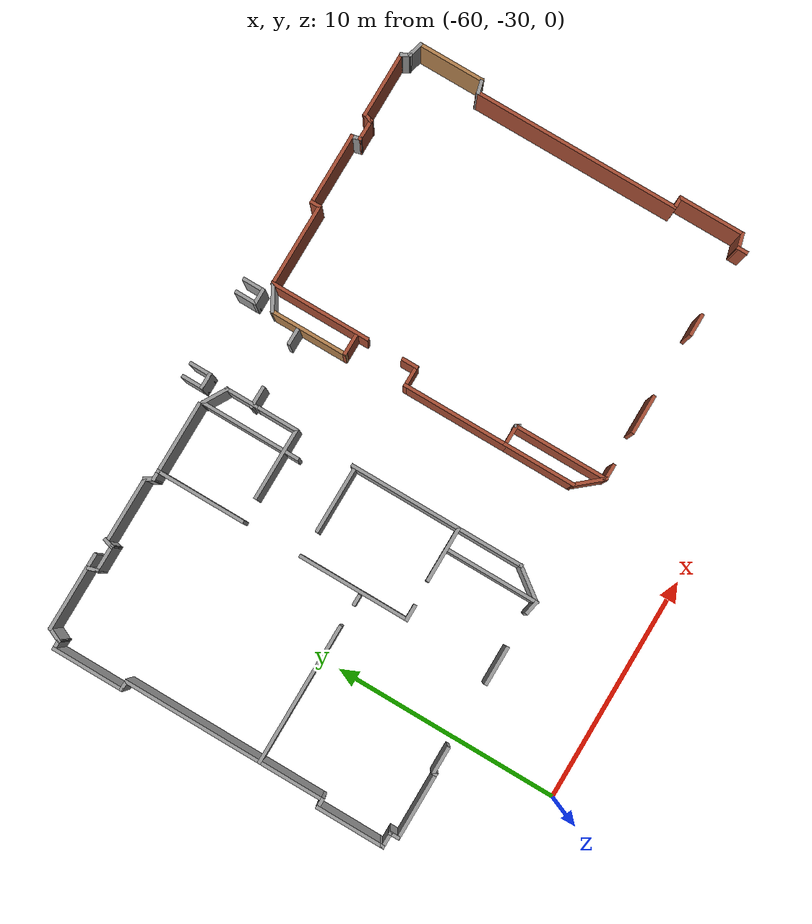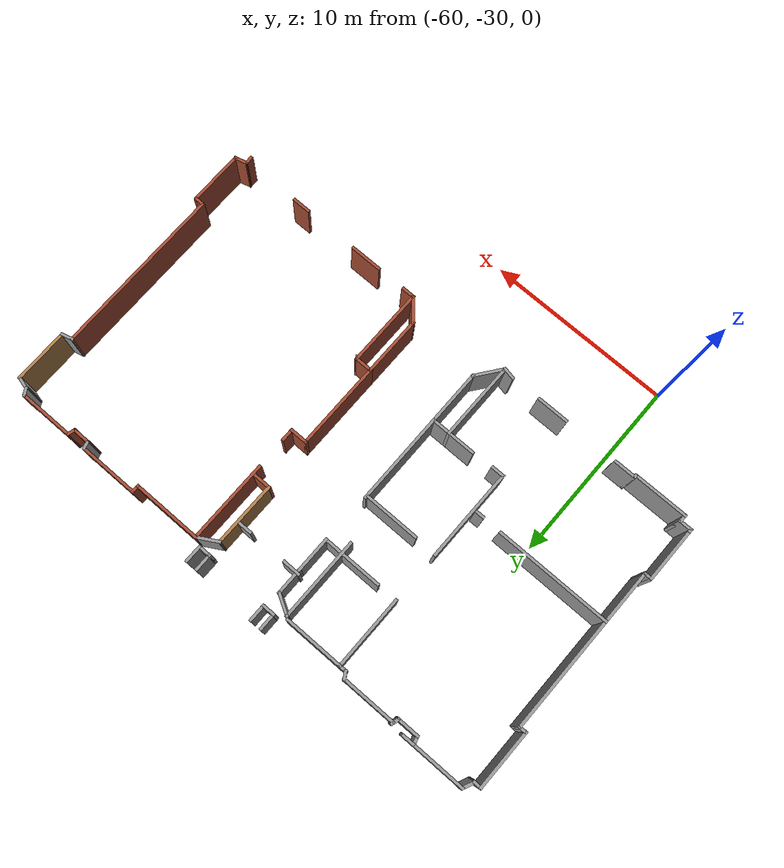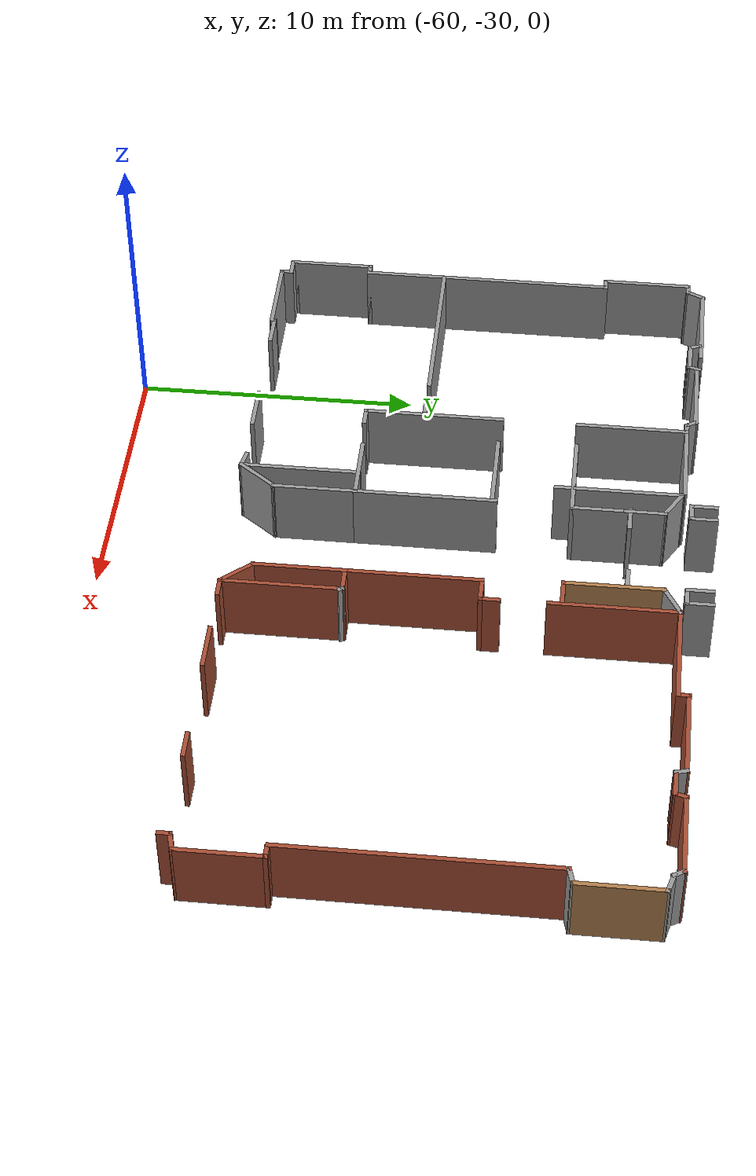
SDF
<sdf version="1.7">
 <model name="TD_1">
  <pose>-32.4963 -12.7971 0 0 -0 0</pose>
  <link name="Wall_10">
   <collision name="Wall_10_Collision">
    <geometry><box><size>1 0.15 2.5</size></box></geometry>
    <pose>0 0 1.25 0 -0 0</pose>
   </collision>
   <visual name="Wall_10_Visual">
    <pose>0 0 1.25 0 -0 0</pose>
    <geometry><box><size>1 0.15 2.5</size></box></geometry>
    <material>
     <script><uri>file://media/materials/scripts/gazebo.material</uri><name>Gazebo/Bricks</name></script>
     <ambient>1 1 1 1</ambient>
    </material>
    <meta><layer>0</layer></meta>
   </visual>
   <pose>-8.41261 2.89283 0 0 -0 0</pose>
  </link>
  <link name="Wall_100">
   <collision name="Wall_100_Collision">
    <geometry><box><size>0.75 0.15 2.5</size></box></geometry>
    <pose>0 0 1.25 0 -0 0</pose>
   </collision>
   <visual name="Wall_100_Visual">
    <pose>0 0 1.25 0 -0 0</pose>
    <geometry><box><size>0.75 0.15 2.5</size></box></geometry>
    <material>
     <script><uri>file://media/materials/scripts/gazebo.material</uri><name>Gazebo/Grey</name></script>
     <ambient>1 1 1 1</ambient>
    </material>
    <meta><layer>0</layer></meta>
   </visual>
   <pose>-24.0693 -8.5054 0 0 -0 0</pose>
  </link>
  <link name="Wall_102">
   <collision name="Wall_102_Collision">
    <geometry><box><size>3 0.15 2.5</size></box></geometry>
    <pose>0 0 1.25 0 -0 0</pose>
   </collision>
   <visual name="Wall_102_Visual">
    <pose>0 0 1.25 0 -0 0</pose>
    <geometry><box><size>3 0.15 2.5</size></box></geometry>
    <material>
     <script><uri>file://media/materials/scripts/gazebo.material</uri><name>Gazebo/Grey</name></script>
     <ambient>1 1 1 1</ambient>
    </material>
    <meta><layer>0</layer></meta>
   </visual>
   <pose>-21.7443 -3.6954 0 0 -0 0</pose>
  </link>
  <link name="Wall_106">
   <collision name="Wall_106_Collision">
    <geometry><box><size>2.5 0.15 2.5</size></box></geometry>
    <pose>0 0 1.25 0 -0 0</pose>
   </collision>
   <visual name="Wall_106_Visual">
    <pose>0 0 1.25 0 -0 0</pose>
    <geometry><box><size>2.5 0.15 2.5</size></box></geometry>
    <material>
     <script><uri>file://media/materials/scripts/gazebo.material</uri><name>Gazebo/Grey</name></script>
     <ambient>1 1 1 1</ambient>
    </material>
    <meta><layer>0</layer></meta>
   </visual>
   <pose>-21.4301 -8.4346 0 0 -0 0</pose>
  </link>
  <link name="Wall_107">
   <collision name="Wall_107_Collision">
    <geometry><box><size>5 0.15 2.5</size></box></geometry>
    <pose>0 0 1.25 0 -0 0</pose>
   </collision>
   <visual name="Wall_107_Visual">
    <pose>0 0 1.25 0 -0 0</pose>
    <geometry><box><size>5 0.15 2.5</size></box></geometry>
    <material>
     <script><uri>file://media/materials/scripts/gazebo.material</uri><name>Gazebo/Grey</name></script>
     <ambient>1 1 1 1</ambient>
    </material>
    <meta><layer>0</layer></meta>
   </visual>
   <pose>-20.2551 -6.0096 0 0 -0 1.5708</pose>
  </link>
  <link name="Wall_109">
   <collision name="Wall_109_Collision">
    <geometry><box><size>3 0.15 2.5</size></box></geometry>
    <pose>0 0 1.25 0 -0 0</pose>
   </collision>
   <visual name="Wall_109_Visual">
    <pose>0 0 1.25 0 -0 0</pose>
    <geometry><box><size>3 0.15 2.5</size></box></geometry>
    <material>
     <script><uri>file://media/materials/scripts/gazebo.material</uri><name>Gazebo/Grey</name></script>
     <ambient>1 1 1 1</ambient>
    </material>
    <meta><layer>0</layer></meta>
   </visual>
   <pose>-32.0643 -7.82191 0 0 -0 -1.5708</pose>
  </link>
  <link name="Wall_11">
   <collision name="Wall_11_Collision">
    <geometry><box><size>0.5 0.15 2.5</size></box></geometry>
    <pose>0 0 1.25 0 -0 0</pose>
   </collision>
   <visual name="Wall_11_Visual">
    <pose>0 0 1.25 0 -0 0</pose>
    <geometry><box><size>0.5 0.15 2.5</size></box></geometry>
    <material>
     <script><uri>file://media/materials/scripts/gazebo.material</uri><name>Gazebo/Bricks</name></script>
     <ambient>1 1 1 1</ambient>
    </material>
    <meta><layer>0</layer></meta>
   </visual>
   <pose>-7.94231 3.06187 0 0 -0 1.309</pose>
  </link>
  <link name="Wall_110">
   <collision name="Wall_110_Collision">
    <geometry><box><size>0.5 0.15 2.5</size></box></geometry>
    <pose>0 0 1.25 0 -0 0</pose>
   </collision>
   <visual name="Wall_110_Visual">
    <pose>0 0 1.25 0 -0 0</pose>
    <geometry><box><size>0.5 0.15 2.5</size></box></geometry>
    <material>
     <script><uri>file://media/materials/scripts/gazebo.material</uri><name>Gazebo/Grey</name></script>
     <ambient>1 1 1 1</ambient>
    </material>
    <meta><layer>0</layer></meta>
   </visual>
   <pose>-32.2393 -9.24691 0 0 -0 3.14159</pose>
  </link>
  <link name="Wall_111">
   <collision name="Wall_111_Collision">
    <geometry><box><size>3 0.15 2.5</size></box></geometry>
    <pose>0 0 1.25 0 -0 0</pose>
   </collision>
   <visual name="Wall_111_Visual">
    <pose>0 0 1.25 0 -0 0</pose>
    <geometry><box><size>3 0.15 2.5</size></box></geometry>
    <material>
     <script><uri>file://media/materials/scripts/gazebo.material</uri><name>Gazebo/Grey</name></script>
     <ambient>1 1 1 1</ambient>
    </material>
    <meta><layer>0</layer></meta>
   </visual>
   <pose>-32.4143 -10.6719 0 0 -0 -1.5708</pose>
  </link>
  <link name="Wall_112">
   <collision name="Wall_112_Collision">
    <geometry><box><size>0.25 0.15 2.5</size></box></geometry>
    <pose>0 0 1.25 0 -0 0</pose>
   </collision>
   <visual name="Wall_112_Visual">
    <pose>0 0 1.25 0 -0 0</pose>
    <geometry><box><size>0.25 0.15 2.5</size></box></geometry>
    <material>
     <script><uri>file://media/materials/scripts/gazebo.material</uri><name>Gazebo/Grey</name></script>
     <ambient>1 1 1 1</ambient>
    </material>
    <meta><layer>0</layer></meta>
   </visual>
   <pose>-32.4143 -12.1469 0 0 -0 -1.5708</pose>
  </link>
  <link name="Wall_113">
   <collision name="Wall_113_Collision">
    <geometry><box><size>0.75 0.15 2.5</size></box></geometry>
    <pose>0 0 1.25 0 -0 0</pose>
   </collision>
   <visual name="Wall_113_Visual">
    <pose>0 0 1.25 0 -0 0</pose>
    <geometry><box><size>0.75 0.15 2.5</size></box></geometry>
    <material>
     <script><uri>file://media/materials/scripts/gazebo.material</uri><name>Gazebo/Grey</name></script>
     <ambient>1 1 1 1</ambient>
    </material>
    <meta><layer>0</layer></meta>
   </visual>
   <pose>-32.1143 -12.1969 0 0 -0 0</pose>
  </link>
  <link name="Wall_114">
   <collision name="Wall_114_Collision">
    <geometry><box><size>0.5 0.15 2.5</size></box></geometry>
    <pose>0 0 1.25 0 -0 0</pose>
   </collision>
   <visual name="Wall_114_Visual">
    <pose>0 0 1.25 0 -0 0</pose>
    <geometry><box><size>0.5 0.15 2.5</size></box></geometry>
    <material>
     <script><uri>file://media/materials/scripts/gazebo.material</uri><name>Gazebo/Grey</name></script>
     <ambient>1 1 1 1</ambient>
    </material>
    <meta><layer>0</layer></meta>
   </visual>
   <pose>-31.8143 -12.3719 0 0 -0 -1.5708</pose>
  </link>
  <link name="Wall_118">
   <collision name="Wall_118_Collision">
    <geometry><box><size>3 0.15 2.5</size></box></geometry>
    <pose>0 0 1.25 0 -0 0</pose>
   </collision>
   <visual name="Wall_118_Visual">
    <pose>0 0 1.25 0 -0 0</pose>
    <geometry><box><size>3 0.15 2.5</size></box></geometry>
    <material>
     <script><uri>file://media/materials/scripts/gazebo.material</uri><name>Gazebo/Grey</name></script>
     <ambient>1 1 1 1</ambient>
    </material>
    <meta><layer>0</layer></meta>
   </visual>
   <pose>-30.3893 -12.5469 0 0 -0 0</pose>
  </link>
  <link name="Wall_119">
   <collision name="Wall_119_Collision">
    <geometry><box><size>0.25 0.15 2.5</size></box></geometry>
    <pose>0 0 1.25 0 -0 0</pose>
   </collision>
   <visual name="Wall_119_Visual">
    <pose>0 0 1.25 0 -0 0</pose>
    <geometry><box><size>0.25 0.15 2.5</size></box></geometry>
    <material>
     <script><uri>file://media/materials/scripts/gazebo.material</uri><name>Gazebo/Grey</name></script>
     <ambient>1 1 1 1</ambient>
    </material>
    <meta><layer>0</layer></meta>
   </visual>
   <pose>-28.9643 -12.4969 0 0 -0 1.5708</pose>
  </link>
  <link name="Wall_12">
   <collision name="Wall_12_Collision">
    <geometry><box><size>3 0.15 2.5</size></box></geometry>
    <pose>0 0 1.25 0 -0 0</pose>
   </collision>
   <visual name="Wall_12_Visual">
    <pose>0 0 1.25 0 -0 0</pose>
    <geometry><box><size>3 0.15 2.5</size></box></geometry>
    <material>
     <script><uri>file://media/materials/scripts/gazebo.material</uri><name>Gazebo/Bricks</name></script>
     <ambient>1 1 1 1</ambient>
    </material>
    <meta><layer>0</layer></meta>
   </visual>
   <pose>-6.47202 3.2309 0 0 -0 0</pose>
  </link>
  <link name="Wall_120">
   <collision name="Wall_120_Collision">
    <geometry><box><size>1.25 0.15 2.5</size></box></geometry>
    <pose>0 0 1.25 0 -0 0</pose>
   </collision>
   <visual name="Wall_120_Visual">
    <pose>0 0 1.25 0 -0 0</pose>
    <geometry><box><size>1.25 0.15 2.5</size></box></geometry>
    <material>
     <script><uri>file://media/materials/scripts/gazebo.material</uri><name>Gazebo/Grey</name></script>
     <ambient>1 1 1 1</ambient>
    </material>
    <meta><layer>0</layer></meta>
   </visual>
   <pose>-28.4143 -12.4469 0 0 -0 0</pose>
  </link>
  <link name="Wall_124">
   <collision name="Wall_124_Collision">
    <geometry><box><size>1.75 0.15 2.5</size></box></geometry>
    <pose>0 0 1.25 0 -0 0</pose>
   </collision>
   <visual name="Wall_124_Visual">
    <pose>0 0 1.25 0 -0 0</pose>
    <geometry><box><size>1.75 0.15 2.5</size></box></geometry>
    <material>
     <script><uri>file://media/materials/scripts/gazebo.material</uri><name>Gazebo/Grey</name></script>
     <ambient>1 1 1 1</ambient>
    </material>
    <meta><layer>0</layer></meta>
   </visual>
   <pose>-24.1237 -12.4588 0 0 -0 0</pose>
  </link>
  <link name="Wall_126">
   <collision name="Wall_126_Collision">
    <geometry><box><size>4.25 0.15 2.5</size></box></geometry>
    <pose>0 0 1.25 0 -0 0</pose>
   </collision>
   <visual name="Wall_126_Visual">
    <pose>0 0 1.25 0 -0 0</pose>
    <geometry><box><size>4.25 0.15 2.5</size></box></geometry>
    <material>
     <script><uri>file://media/materials/scripts/gazebo.material</uri><name>Gazebo/Grey</name></script>
     <ambient>1 1 1 1</ambient>
    </material>
    <meta><layer>0</layer></meta>
   </visual>
   <pose>-21.1888 -10.4845 0 0 -0 -1.5708</pose>
  </link>
  <link name="Wall_129">
   <collision name="Wall_129_Collision">
    <geometry><box><size>0.699097 0.15 2.5</size></box></geometry>
    <pose>0 0 1.25 0 -0 0</pose>
   </collision>
   <visual name="Wall_129_Visual">
    <pose>0 0 1.25 0 -0 0</pose>
    <geometry><box><size>0.699097 0.15 2.5</size></box></geometry>
    <material>
     <script><uri>file://media/materials/scripts/gazebo.material</uri><name>Gazebo/Grey</name></script>
     <ambient>1 1 1 1</ambient>
    </material>
    <meta><layer>0</layer></meta>
   </visual>
   <pose>-21.4584 -12.4828 0 0 -0 -0.189446</pose>
  </link>
  <link name="Wall_13">
   <collision name="Wall_13_Collision">
    <geometry><box><size>0.15 0.15 2.5</size></box></geometry>
    <pose>0 0 1.25 0 -0 0</pose>
   </collision>
   <visual name="Wall_13_Visual">
    <pose>0 0 1.25 0 -0 0</pose>
    <geometry><box><size>0.15 0.15 2.5</size></box></geometry>
    <material>
     <script><uri>file://media/materials/scripts/gazebo.material</uri><name>Gazebo/Grey</name></script>
     <ambient>1 1 1 1</ambient>
    </material>
    <meta><layer>0</layer></meta>
   </visual>
   <pose>-5.04702 3.2309 0 0 -0 0</pose>
  </link>
  <link name="Wall_133">
   <collision name="Wall_133_Collision">
    <geometry><box><size>3 0.15 2.5</size></box></geometry>
    <pose>0 0 1.25 0 -0 0</pose>
   </collision>
   <visual name="Wall_133_Visual">
    <pose>0 0 1.25 0 -0 0</pose>
    <geometry><box><size>3 0.15 2.5</size></box></geometry>
    <material>
     <script><uri>file://media/materials/scripts/gazebo.material</uri><name>Gazebo/Grey</name></script>
     <ambient>1 1 1 1</ambient>
    </material>
    <meta><layer>0</layer></meta>
   </visual>
   <pose>-20.2551 -9.8596 0 0 -0 -1.5708</pose>
  </link>
  <link name="Wall_134">
   <collision name="Wall_134_Collision">
    <geometry><box><size>1.71016 0.15 2.5</size></box></geometry>
    <pose>0 0 1.25 0 -0 0</pose>
   </collision>
   <visual name="Wall_134_Visual">
    <pose>0 0 1.25 0 -0 0</pose>
    <geometry><box><size>1.71016 0.15 2.5</size></box></geometry>
    <material>
     <script><uri>file://media/materials/scripts/gazebo.material</uri><name>Gazebo/Grey</name></script>
     <ambient>1 1 1 1</ambient>
    </material>
    <meta><layer>0</layer></meta>
   </visual>
   <pose>-20.7219 -11.9096 0 0 -0 -2.2124</pose>
  </link>
  <link name="Wall_14">
   <collision name="Wall_14_Collision">
    <geometry><box><size>0.15 0.15 2.5</size></box></geometry>
    <pose>0 0 1.25 0 -0 0</pose>
   </collision>
   <visual name="Wall_14_Visual">
    <pose>0 0 1.25 0 -0 0</pose>
    <geometry><box><size>0.15 0.15 2.5</size></box></geometry>
    <material>
     <script><uri>file://media/materials/scripts/gazebo.material</uri><name>Gazebo/Grey</name></script>
     <ambient>1 1 1 1</ambient>
    </material>
    <meta><layer>0</layer></meta>
   </visual>
   <pose>-5.04702 3.2309 0 0 -0 0</pose>
  </link>
  <link name="Wall_16">
   <collision name="Wall_16_Collision">
    <geometry><box><size>0.5 0.15 2.5</size></box></geometry>
    <pose>0 0 1.25 0 -0 0</pose>
   </collision>
   <visual name="Wall_16_Visual">
    <pose>0 0 1.25 0 -0 0</pose>
    <geometry><box><size>0.5 0.15 2.5</size></box></geometry>
    <material>
     <script><uri>file://media/materials/scripts/gazebo.material</uri><name>Gazebo/Grey</name></script>
     <ambient>1 1 1 1</ambient>
    </material>
    <meta><layer>0</layer></meta>
   </visual>
   <pose>-4.95952 3.07935 0 0 -0 -1.0472</pose>
  </link>
  <link name="Wall_17">
   <collision name="Wall_17_Collision">
    <geometry><box><size>0.75 0.15 2.5</size></box></geometry>
    <pose>0 0 1.25 0 -0 0</pose>
   </collision>
   <visual name="Wall_17_Visual">
    <pose>0 0 1.25 0 -0 0</pose>
    <geometry><box><size>0.75 0.15 2.5</size></box></geometry>
    <material>
     <script><uri>file://media/materials/scripts/gazebo.material</uri><name>Gazebo/Grey</name></script>
     <ambient>1 1 1 1</ambient>
    </material>
    <meta><layer>0</layer></meta>
   </visual>
   <pose>-4.58237 2.84997 0 0 -0 -0.262493</pose>
  </link>
  <link name="Wall_18">
   <collision name="Wall_18_Collision">
    <geometry><box><size>3 0.15 2.5</size></box></geometry>
    <pose>0 0 1.25 0 -0 0</pose>
   </collision>
   <visual name="Wall_18_Visual">
    <pose>0 0 1.25 0 -0 0</pose>
    <geometry><box><size>3 0.15 2.5</size></box></geometry>
    <material>
     <script><uri>file://media/materials/scripts/gazebo.material</uri><name>Gazebo/Wood</name></script>
     <ambient>1 1 1 1</ambient>
    </material>
    <meta><layer>0</layer></meta>
   </visual>
   <pose>-4.29273 1.34715 0 0 -0 -1.5708</pose>
  </link>
  <link name="Wall_21">
   <collision name="Wall_21_Collision">
    <geometry><box><size>0.681794 0.15 2.5</size></box></geometry>
    <pose>0 0 1.25 0 -0 0</pose>
   </collision>
   <visual name="Wall_21_Visual">
    <pose>0 0 1.25 0 -0 0</pose>
    <geometry><box><size>0.681794 0.15 2.5</size></box></geometry>
    <material>
     <script><uri>file://media/materials/scripts/gazebo.material</uri><name>Gazebo/Grey</name></script>
     <ambient>1 1 1 1</ambient>
    </material>
    <meta><layer>0</layer></meta>
   </visual>
   <pose>-4.54964 -0.146374 0 0 -0 0.26063</pose>
  </link>
  <link name="Wall_3">
   <collision name="Wall_3_Collision">
    <geometry><box><size>1 0.15 2.5</size></box></geometry>
    <pose>0 0 1.25 0 -0 0</pose>
   </collision>
   <visual name="Wall_3_Visual">
    <pose>0 0 1.25 0 -0 0</pose>
    <geometry><box><size>1 0.15 2.5</size></box></geometry>
    <material>
     <script><uri>file://media/materials/scripts/gazebo.material</uri><name>Gazebo/Bricks</name></script>
     <ambient>1 1 1 1</ambient>
    </material>
    <meta><layer>0</layer></meta>
   </visual>
   <pose>-16.1747 -1.02961 0 0 -0 0</pose>
  </link>
  <link name="Wall_30">
   <collision name="Wall_30_Collision">
    <geometry><box><size>0.75 0.15 2.5</size></box></geometry>
    <pose>0 0 1.25 0 -0 0</pose>
   </collision>
   <visual name="Wall_30_Visual">
    <pose>0 0 1.25 0 -0 0</pose>
    <geometry><box><size>0.75 0.15 2.5</size></box></geometry>
    <material>
     <script><uri>file://media/materials/scripts/gazebo.material</uri><name>Gazebo/Bricks</name></script>
     <ambient>1 1 1 1</ambient>
    </material>
    <meta><layer>0</layer></meta>
   </visual>
   <pose>-15.5962 -3.43538 0 0 -0 -1.5708</pose>
  </link>
  <link name="Wall_31">
   <collision name="Wall_31_Collision">
    <geometry><box><size>1 0.15 2.5</size></box></geometry>
    <pose>0 0 1.25 0 -0 0</pose>
   </collision>
   <visual name="Wall_31_Visual">
    <pose>0 0 1.25 0 -0 0</pose>
    <geometry><box><size>1 0.15 2.5</size></box></geometry>
    <material>
     <script><uri>file://media/materials/scripts/gazebo.material</uri><name>Gazebo/Bricks</name></script>
     <ambient>1 1 1 1</ambient>
    </material>
    <meta><layer>0</layer></meta>
   </visual>
   <pose>-16.0212 -3.73538 0 0 -0 3.14159</pose>
  </link>
  <link name="Wall_33">
   <collision name="Wall_33_Collision">
    <geometry><box><size>4.75 0.15 2.5</size></box></geometry>
    <pose>0 0 1.25 0 -0 0</pose>
   </collision>
   <visual name="Wall_33_Visual">
    <pose>0 0 1.25 0 -0 0</pose>
    <geometry><box><size>4.75 0.15 2.5</size></box></geometry>
    <material>
     <script><uri>file://media/materials/scripts/gazebo.material</uri><name>Gazebo/Bricks</name></script>
     <ambient>1 1 1 1</ambient>
    </material>
    <meta><layer>0</layer></meta>
   </visual>
   <pose>-16.4462 -6.03538 0 0 -0 -1.5708</pose>
  </link>
  <link name="Wall_34">
   <collision name="Wall_34_Collision">
    <geometry><box><size>1 0.15 2.5</size></box></geometry>
    <pose>0 0 1.25 0 -0 0</pose>
   </collision>
   <visual name="Wall_34_Visual">
    <pose>0 0 1.25 0 -0 0</pose>
    <geometry><box><size>1 0.15 2.5</size></box></geometry>
    <material>
     <script><uri>file://media/materials/scripts/gazebo.material</uri><name>Gazebo/Bricks</name></script>
     <ambient>1 1 1 1</ambient>
    </material>
    <meta><layer>0</layer></meta>
   </visual>
   <pose>-16.0212 -8.33538 0 0 -0 0</pose>
  </link>
  <link name="Wall_35">
   <collision name="Wall_35_Collision">
    <geometry><box><size>0.15 0.15 2.5</size></box></geometry>
    <pose>0 0 1.25 0 -0 0</pose>
   </collision>
   <visual name="Wall_35_Visual">
    <pose>0 0 1.25 0 -0 0</pose>
    <geometry><box><size>0.15 0.15 2.5</size></box></geometry>
    <material>
     <script><uri>file://media/materials/scripts/gazebo.material</uri><name>Gazebo/Grey</name></script>
     <ambient>1 1 1 1</ambient>
    </material>
    <meta><layer>0</layer></meta>
   </visual>
   <pose>-15.5962 -8.33538 0 0 -0 0</pose>
  </link>
  <link name="Wall_36">
   <collision name="Wall_36_Collision">
    <geometry><box><size>0.25 0.15 2.5</size></box></geometry>
    <pose>0 0 1.25 0 -0 0</pose>
   </collision>
   <visual name="Wall_36_Visual">
    <pose>0 0 1.25 0 -0 0</pose>
    <geometry><box><size>0.25 0.15 2.5</size></box></geometry>
    <material>
     <script><uri>file://media/materials/scripts/gazebo.material</uri><name>Gazebo/Grey</name></script>
     <ambient>1 1 1 1</ambient>
    </material>
    <meta><layer>0</layer></meta>
   </visual>
   <pose>-15.5712 -8.37868 0 0 -0 -1.0472</pose>
  </link>
  <link name="Wall_38">
   <collision name="Wall_38_Collision">
    <geometry><box><size>4.25 0.15 2.5</size></box></geometry>
    <pose>0 0 1.25 0 -0 0</pose>
   </collision>
   <visual name="Wall_38_Visual">
    <pose>0 0 1.25 0 -0 0</pose>
    <geometry><box><size>4.25 0.15 2.5</size></box></geometry>
    <material>
     <script><uri>file://media/materials/scripts/gazebo.material</uri><name>Gazebo/Bricks</name></script>
     <ambient>1 1 1 1</ambient>
    </material>
    <meta><layer>0</layer></meta>
   </visual>
   <pose>-15.5962 -10.3854 0 0 -0 -1.5708</pose>
  </link>
  <link name="Wall_39">
   <collision name="Wall_39_Collision">
    <geometry><box><size>0.75 0.15 2.5</size></box></geometry>
    <pose>0 0 1.25 0 -0 0</pose>
   </collision>
   <visual name="Wall_39_Visual">
    <pose>0 0 1.25 0 -0 0</pose>
    <geometry><box><size>0.75 0.15 2.5</size></box></geometry>
    <material>
     <script><uri>file://media/materials/scripts/gazebo.material</uri><name>Gazebo/Bricks</name></script>
     <ambient>1 1 1 1</ambient>
    </material>
    <meta><layer>0</layer></meta>
   </visual>
   <pose>-15.2962 -12.4354 0 0 -0 0</pose>
  </link>
  <link name="Wall_403">
   <collision name="Wall_403_Collision">
    <geometry><box><size>1 0.15 2.5</size></box></geometry>
    <pose>0 0 1.25 0 -0 0</pose>
   </collision>
   <visual name="Wall_403_Visual">
    <pose>0 0 1.25 0 -0 0</pose>
    <geometry><box><size>1 0.15 2.5</size></box></geometry>
    <material>
     <script><uri>file://media/materials/scripts/gazebo.material</uri><name>Gazebo/Grey</name></script>
     <ambient>1 1 1 1</ambient>
    </material>
    <meta><layer>0</layer></meta>
   </visual>
   <pose>-20.6379 3.57846 0 0 -0 -1.5708</pose>
  </link>
  <link name="Wall_404">
   <collision name="Wall_404_Collision">
    <geometry><box><size>0.75 0.15 2.5</size></box></geometry>
    <pose>0 0 1.25 0 -0 0</pose>
   </collision>
   <visual name="Wall_404_Visual">
    <pose>0 0 1.25 0 -0 0</pose>
    <geometry><box><size>0.75 0.15 2.5</size></box></geometry>
    <material>
     <script><uri>file://media/materials/scripts/gazebo.material</uri><name>Gazebo/Grey</name></script>
     <ambient>1 1 1 1</ambient>
    </material>
    <meta><layer>0</layer></meta>
   </visual>
   <pose>-20.3379 3.15346 0 0 -0 0</pose>
  </link>
  <link name="Wall_405">
   <collision name="Wall_405_Collision">
    <geometry><box><size>1 0.15 2.5</size></box></geometry>
    <pose>0 0 1.25 0 -0 0</pose>
   </collision>
   <visual name="Wall_405_Visual">
    <pose>0 0 1.25 0 -0 0</pose>
    <geometry><box><size>1 0.15 2.5</size></box></geometry>
    <material>
     <script><uri>file://media/materials/scripts/gazebo.material</uri><name>Gazebo/Grey</name></script>
     <ambient>1 1 1 1</ambient>
    </material>
    <meta><layer>0</layer></meta>
   </visual>
   <pose>-20.0379 3.57846 0 0 -0 1.5708</pose>
  </link>
  <link name="Wall_408">
   <collision name="Wall_408_Collision">
    <geometry><box><size>1 0.15 2.5</size></box></geometry>
    <pose>0 0 1.25 0 -0 0</pose>
   </collision>
   <visual name="Wall_408_Visual">
    <pose>0 0 1.25 0 -0 0</pose>
    <geometry><box><size>1 0.15 2.5</size></box></geometry>
    <material>
     <script><uri>file://media/materials/scripts/gazebo.material</uri><name>Gazebo/Grey</name></script>
     <ambient>1 1 1 1</ambient>
    </material>
    <meta><layer>0</layer></meta>
   </visual>
   <pose>-16.6692 3.50929 0 0 -0 -1.5708</pose>
  </link>
  <link name="Wall_409">
   <collision name="Wall_409_Collision">
    <geometry><box><size>0.75 0.15 2.5</size></box></geometry>
    <pose>0 0 1.25 0 -0 0</pose>
   </collision>
   <visual name="Wall_409_Visual">
    <pose>0 0 1.25 0 -0 0</pose>
    <geometry><box><size>0.75 0.15 2.5</size></box></geometry>
    <material>
     <script><uri>file://media/materials/scripts/gazebo.material</uri><name>Gazebo/Grey</name></script>
     <ambient>1 1 1 1</ambient>
    </material>
    <meta><layer>0</layer></meta>
   </visual>
   <pose>-16.3692 3.08429 0 0 -0 0</pose>
  </link>
  <link name="Wall_41">
   <collision name="Wall_41_Collision">
    <geometry><box><size>3.25 0.15 2.5</size></box></geometry>
    <pose>0 0 1.25 0 -0 0</pose>
   </collision>
   <visual name="Wall_41_Visual">
    <pose>0 0 1.25 0 -0 0</pose>
    <geometry><box><size>3.25 0.15 2.5</size></box></geometry>
    <material>
     <script><uri>file://media/materials/scripts/gazebo.material</uri><name>Gazebo/Bricks</name></script>
     <ambient>1 1 1 1</ambient>
    </material>
    <meta><layer>0</layer></meta>
   </visual>
   <pose>-16.4462 -9.88538 0 0 -0 -1.5708</pose>
  </link>
  <link name="Wall_410">
   <collision name="Wall_410_Collision">
    <geometry><box><size>1 0.15 2.5</size></box></geometry>
    <pose>0 0 1.25 0 -0 0</pose>
   </collision>
   <visual name="Wall_410_Visual">
    <pose>0 0 1.25 0 -0 0</pose>
    <geometry><box><size>1 0.15 2.5</size></box></geometry>
    <material>
     <script><uri>file://media/materials/scripts/gazebo.material</uri><name>Gazebo/Grey</name></script>
     <ambient>1 1 1 1</ambient>
    </material>
    <meta><layer>0</layer></meta>
   </visual>
   <pose>-16.0692 3.50929 0 0 -0 1.5708</pose>
  </link>
  <link name="Wall_42">
   <collision name="Wall_42_Collision">
    <geometry><box><size>1.46244 0.15 2.5</size></box></geometry>
    <pose>0 0 1.25 0 -0 0</pose>
   </collision>
   <visual name="Wall_42_Visual">
    <pose>0 0 1.25 0 -0 0</pose>
    <geometry><box><size>1.46244 0.15 2.5</size></box></geometry>
    <material>
     <script><uri>file://media/materials/scripts/gazebo.material</uri><name>Gazebo/Bricks</name></script>
     <ambient>1 1 1 1</ambient>
    </material>
    <meta><layer>0</layer></meta>
   </visual>
   <pose>-16.0212 -11.9354 0 0 -0 -0.866302</pose>
  </link>
  <link name="Wall_44">
   <collision name="Wall_44_Collision">
    <geometry><box><size>1.75 0.15 2.5</size></box></geometry>
    <pose>0 0 1.25 0 -0 0</pose>
   </collision>
   <visual name="Wall_44_Visual">
    <pose>0 0 1.25 0 -0 0</pose>
    <geometry><box><size>1.75 0.15 2.5</size></box></geometry>
    <material>
     <script><uri>file://media/materials/scripts/gazebo.material</uri><name>Gazebo/Bricks</name></script>
     <ambient>1 1 1 1</ambient>
    </material>
    <meta><layer>0</layer></meta>
   </visual>
   <pose>-12.6274 -12.43 0 0 -0 0</pose>
  </link>
  <link name="Wall_463">
   <collision name="Wall_463_Collision">
    <geometry><box><size>3.5 0.15 2.5</size></box></geometry>
    <pose>0 0 1.25 0 -0 0</pose>
   </collision>
   <visual name="Wall_463_Visual">
    <pose>0 0 1.25 0 -0 0</pose>
    <geometry><box><size>3.5 0.15 2.5</size></box></geometry>
    <material>
     <script><uri>file://media/materials/scripts/gazebo.material</uri><name>Gazebo/Grey</name></script>
     <ambient>1 1 1 1</ambient>
    </material>
    <meta><layer>0</layer></meta>
   </visual>
   <pose>-30.1373 3.33675 0 0 -0 0</pose>
  </link>
  <link name="Wall_469">
   <collision name="Wall_469_Collision">
    <geometry><box><size>1.25 0.15 2.5</size></box></geometry>
    <pose>0 0 1.25 0 -0 0</pose>
   </collision>
   <visual name="Wall_469_Visual">
    <pose>0 0 1.25 0 -0 0</pose>
    <geometry><box><size>1.25 0.15 2.5</size></box></geometry>
    <material>
     <script><uri>file://media/materials/scripts/gazebo.material</uri><name>Gazebo/Grey</name></script>
     <ambient>1 1 1 1</ambient>
    </material>
    <meta><layer>0</layer></meta>
   </visual>
   <pose>-28.3863 2.94488 0 0 -0 0</pose>
  </link>
  <link name="Wall_470">
   <collision name="Wall_470_Collision">
    <geometry><box><size>0.5 0.15 2.5</size></box></geometry>
    <pose>0 0 1.25 0 -0 0</pose>
   </collision>
   <visual name="Wall_470_Visual">
    <pose>0 0 1.25 0 -0 0</pose>
    <geometry><box><size>0.5 0.15 2.5</size></box></geometry>
    <material>
     <script><uri>file://media/materials/scripts/gazebo.material</uri><name>Gazebo/Grey</name></script>
     <ambient>1 1 1 1</ambient>
    </material>
    <meta><layer>0</layer></meta>
   </visual>
   <pose>-27.791 3.11391 0 0 -0 1.309</pose>
  </link>
  <link name="Wall_472">
   <collision name="Wall_472_Collision">
    <geometry><box><size>0.5 0.15 2.5</size></box></geometry>
    <pose>0 0 1.25 0 -0 0</pose>
   </collision>
   <visual name="Wall_472_Visual">
    <pose>0 0 1.25 0 -0 0</pose>
    <geometry><box><size>0.5 0.15 2.5</size></box></geometry>
    <material>
     <script><uri>file://media/materials/scripts/gazebo.material</uri><name>Gazebo/Grey</name></script>
     <ambient>1 1 1 1</ambient>
    </material>
    <meta><layer>0</layer></meta>
   </visual>
   <pose>-28.9816 3.11391 0 0 -0 1.8326</pose>
  </link>
  <link name="Wall_474">
   <collision name="Wall_474_Collision">
    <geometry><box><size>0.5 0.15 2.5</size></box></geometry>
    <pose>0 0 1.25 0 -0 0</pose>
   </collision>
   <visual name="Wall_474_Visual">
    <pose>0 0 1.25 0 -0 0</pose>
    <geometry><box><size>0.5 0.15 2.5</size></box></geometry>
    <material>
     <script><uri>file://media/materials/scripts/gazebo.material</uri><name>Gazebo/Grey</name></script>
     <ambient>1 1 1 1</ambient>
    </material>
    <meta><layer>0</layer></meta>
   </visual>
   <pose>-32.2393 2.80309 0 0 -0 0</pose>
  </link>
  <link name="Wall_475">
   <collision name="Wall_475_Collision">
    <geometry><box><size>0.740153 0.15 2.5</size></box></geometry>
    <pose>0 0 1.25 0 -0 0</pose>
   </collision>
   <visual name="Wall_475_Visual">
    <pose>0 0 1.25 0 -0 0</pose>
    <geometry><box><size>0.740153 0.15 2.5</size></box></geometry>
    <material>
     <script><uri>file://media/materials/scripts/gazebo.material</uri><name>Gazebo/Grey</name></script>
     <ambient>1 1 1 1</ambient>
    </material>
    <meta><layer>0</layer></meta>
   </visual>
   <pose>-31.9383 3.06992 0 0 -0 1.1297</pose>
  </link>
  <link name="Wall_48">
   <collision name="Wall_48_Collision">
    <geometry><box><size>1 0.15 2.5</size></box></geometry>
    <pose>0 0 1.25 0 -0 0</pose>
   </collision>
   <visual name="Wall_48_Visual">
    <pose>0 0 1.25 0 -0 0</pose>
    <geometry><box><size>1 0.15 2.5</size></box></geometry>
    <material>
     <script><uri>file://media/materials/scripts/gazebo.material</uri><name>Gazebo/Bricks</name></script>
     <ambient>1 1 1 1</ambient>
    </material>
    <meta><layer>0</layer></meta>
   </visual>
   <pose>-8.46186 -12.4419 0 0 -0 0</pose>
  </link>
  <link name="Wall_5">
   <collision name="Wall_5_Collision">
    <geometry><box><size>4.5 0.15 2.5</size></box></geometry>
    <pose>0 0 1.25 0 -0 0</pose>
   </collision>
   <visual name="Wall_5_Visual">
    <pose>0 0 1.25 0 -0 0</pose>
    <geometry><box><size>4.5 0.15 2.5</size></box></geometry>
    <material>
     <script><uri>file://media/materials/scripts/gazebo.material</uri><name>Gazebo/Bricks</name></script>
     <ambient>1 1 1 1</ambient>
    </material>
    <meta><layer>0</layer></meta>
   </visual>
   <pose>-15.6282 0.705905 0 0 -0 1.5708</pose>
  </link>
  <link name="Wall_51">
   <collision name="Wall_51_Collision">
    <geometry><box><size>0.5 0.15 2.5</size></box></geometry>
    <pose>0 0 1.25 0 -0 0</pose>
   </collision>
   <visual name="Wall_51_Visual">
    <pose>0 0 1.25 0 -0 0</pose>
    <geometry><box><size>0.5 0.15 2.5</size></box></geometry>
    <material>
     <script><uri>file://media/materials/scripts/gazebo.material</uri><name>Gazebo/Bricks</name></script>
     <ambient>1 1 1 1</ambient>
    </material>
    <meta><layer>0</layer></meta>
   </visual>
   <pose>-4.93937 -12.5144 0 0 -0 1.5708</pose>
  </link>
  <link name="Wall_53">
   <collision name="Wall_53_Collision">
    <geometry><box><size>0.75 0.15 2.5</size></box></geometry>
    <pose>0 0 1.25 0 -0 0</pose>
   </collision>
   <visual name="Wall_53_Visual">
    <pose>0 0 1.25 0 -0 0</pose>
    <geometry><box><size>0.75 0.15 2.5</size></box></geometry>
    <material>
     <script><uri>file://media/materials/scripts/gazebo.material</uri><name>Gazebo/Bricks</name></script>
     <ambient>1 1 1 1</ambient>
    </material>
    <meta><layer>0</layer></meta>
   </visual>
   <pose>-4.64959 -12.2618 0 0 -0 0.261799</pose>
  </link>
  <link name="Wall_54">
   <collision name="Wall_54_Collision">
    <geometry><box><size>3 0.15 2.5</size></box></geometry>
    <pose>0 0 1.25 0 -0 0</pose>
   </collision>
   <visual name="Wall_54_Visual">
    <pose>0 0 1.25 0 -0 0</pose>
    <geometry><box><size>3 0.15 2.5</size></box></geometry>
    <material>
     <script><uri>file://media/materials/scripts/gazebo.material</uri><name>Gazebo/Bricks</name></script>
     <ambient>1 1 1 1</ambient>
    </material>
    <meta><layer>0</layer></meta>
   </visual>
   <pose>-4.35981 -10.7591 0 0 -0 1.5708</pose>
  </link>
  <link name="Wall_55">
   <collision name="Wall_55_Collision">
    <geometry><box><size>0.5 0.15 2.5</size></box></geometry>
    <pose>0 0 1.25 0 -0 0</pose>
   </collision>
   <visual name="Wall_55_Visual">
    <pose>0 0 1.25 0 -0 0</pose>
    <geometry><box><size>0.5 0.15 2.5</size></box></geometry>
    <material>
     <script><uri>file://media/materials/scripts/gazebo.material</uri><name>Gazebo/Bricks</name></script>
     <ambient>1 1 1 1</ambient>
    </material>
    <meta><layer>0</layer></meta>
   </visual>
   <pose>-4.53481 -9.33413 0 0 -0 3.14159</pose>
  </link>
  <link name="Wall_6">
   <collision name="Wall_6_Collision">
    <geometry><box><size>3.75 0.15 2.5</size></box></geometry>
    <pose>0 0 1.25 0 -0 0</pose>
   </collision>
   <visual name="Wall_6_Visual">
    <pose>0 0 1.25 0 -0 0</pose>
    <geometry><box><size>3.75 0.15 2.5</size></box></geometry>
    <material>
     <script><uri>file://media/materials/scripts/gazebo.material</uri><name>Gazebo/Bricks</name></script>
     <ambient>1 1 1 1</ambient>
    </material>
    <meta><layer>0</layer></meta>
   </visual>
   <pose>-13.8282 2.8809 0 0 -0 0</pose>
  </link>
  <link name="Wall_60">
   <collision name="Wall_60_Collision">
    <geometry><box><size>9.25 0.15 2.5</size></box></geometry>
    <pose>0 0 1.25 0 -0 0</pose>
   </collision>
   <visual name="Wall_60_Visual">
    <pose>0 0 1.25 0 -0 0</pose>
    <geometry><box><size>9.25 0.15 2.5</size></box></geometry>
    <material>
     <script><uri>file://media/materials/scripts/gazebo.material</uri><name>Gazebo/Bricks</name></script>
     <ambient>1 1 1 1</ambient>
    </material>
    <meta><layer>0</layer></meta>
   </visual>
   <pose>-4.80656 -4.76489 0 0 -0 -1.5708</pose>
  </link>
  <link name="Wall_62">
   <collision name="Wall_62_Collision">
    <geometry><box><size>3.5 0.15 2.5</size></box></geometry>
    <pose>0 0 1.25 0 -0 0</pose>
   </collision>
   <visual name="Wall_62_Visual">
    <pose>0 0 1.25 0 -0 0</pose>
    <geometry><box><size>3.5 0.15 2.5</size></box></geometry>
    <material>
     <script><uri>file://media/materials/scripts/gazebo.material</uri><name>Gazebo/Wood</name></script>
     <ambient>1 1 1 1</ambient>
    </material>
    <meta><layer>0</layer></meta>
   </visual>
   <pose>-16.5997 0.645386 0 0 -0 1.5708</pose>
  </link>
  <link name="Wall_63">
   <collision name="Wall_63_Collision">
    <geometry><box><size>1.27159 0.15 2.5</size></box></geometry>
    <pose>0 0 1.25 0 -0 0</pose>
   </collision>
   <visual name="Wall_63_Visual">
    <pose>0 0 1.25 0 -0 0</pose>
    <geometry><box><size>1.27159 0.15 2.5</size></box></geometry>
    <material>
     <script><uri>file://media/materials/scripts/gazebo.material</uri><name>Gazebo/Grey</name></script>
     <ambient>1 1 1 1</ambient>
    </material>
    <meta><layer>0</layer></meta>
   </visual>
   <pose>-16.1139 2.60065 0 0 -0 0.523314</pose>
  </link>
  <link name="Wall_65">
   <collision name="Wall_65_Collision">
    <geometry><box><size>0.75 0.15 2.5</size></box></geometry>
    <pose>0 0 1.25 0 -0 0</pose>
   </collision>
   <visual name="Wall_65_Visual">
    <pose>0 0 1.25 0 -0 0</pose>
    <geometry><box><size>0.75 0.15 2.5</size></box></geometry>
    <material>
     <script><uri>file://media/materials/scripts/gazebo.material</uri><name>Gazebo/Grey</name></script>
     <ambient>1 1 1 1</ambient>
    </material>
    <meta><layer>0</layer></meta>
   </visual>
   <pose>-17.0528 1.08873 0 0 -0 0</pose>
  </link>
  <link name="Wall_67">
   <collision name="Wall_67_Collision">
    <geometry><box><size>1 0.15 2.5</size></box></geometry>
    <pose>0 0 1.25 0 -0 0</pose>
   </collision>
   <visual name="Wall_67_Visual">
    <pose>0 0 1.25 0 -0 0</pose>
    <geometry><box><size>1 0.15 2.5</size></box></geometry>
    <material>
     <script><uri>file://media/materials/scripts/gazebo.material</uri><name>Gazebo/Grey</name></script>
     <ambient>1 1 1 1</ambient>
    </material>
    <meta><layer>0</layer></meta>
   </visual>
   <pose>-19.8478 1.06573 0 0 -0 3.14159</pose>
  </link>
  <link name="Wall_7">
   <collision name="Wall_7_Collision">
    <geometry><box><size>0.5 0.15 2.5</size></box></geometry>
    <pose>0 0 1.25 0 -0 0</pose>
   </collision>
   <visual name="Wall_7_Visual">
    <pose>0 0 1.25 0 -0 0</pose>
    <geometry><box><size>0.5 0.15 2.5</size></box></geometry>
    <material>
     <script><uri>file://media/materials/scripts/gazebo.material</uri><name>Gazebo/Bricks</name></script>
     <ambient>1 1 1 1</ambient>
    </material>
    <meta><layer>0</layer></meta>
   </visual>
   <pose>-12.0282 3.05591 0 0 -0 1.5708</pose>
  </link>
  <link name="Wall_71">
   <collision name="Wall_71_Collision">
    <geometry><box><size>1.5 0.15 2.5</size></box></geometry>
    <pose>0 0 1.25 0 -0 0</pose>
   </collision>
   <visual name="Wall_71_Visual">
    <pose>0 0 1.25 0 -0 0</pose>
    <geometry><box><size>1.5 0.15 2.5</size></box></geometry>
    <material>
     <script><uri>file://media/materials/scripts/gazebo.material</uri><name>Gazebo/Grey</name></script>
     <ambient>1 1 1 1</ambient>
    </material>
    <meta><layer>0</layer></meta>
   </visual>
   <pose>-20.1818 1.58673 0 0 -0 -1.5708</pose>
  </link>
  <link name="Wall_73">
   <collision name="Wall_73_Collision">
    <geometry><box><size>1.25 0.15 2.5</size></box></geometry>
    <pose>0 0 1.25 0 -0 0</pose>
   </collision>
   <visual name="Wall_73_Visual">
    <pose>0 0 1.25 0 -0 0</pose>
    <geometry><box><size>1.25 0.15 2.5</size></box></geometry>
    <material>
     <script><uri>file://media/materials/scripts/gazebo.material</uri><name>Gazebo/Grey</name></script>
     <ambient>1 1 1 1</ambient>
    </material>
    <meta><layer>0</layer></meta>
   </visual>
   <pose>-20.6581 2.53673 0 0 -0 2.61799</pose>
  </link>
  <link name="Wall_75">
   <collision name="Wall_75_Collision">
    <geometry><box><size>4.5 0.15 2.5</size></box></geometry>
    <pose>0 0 1.25 0 -0 0</pose>
   </collision>
   <visual name="Wall_75_Visual">
    <pose>0 0 1.25 0 -0 0</pose>
    <geometry><box><size>4.5 0.15 2.5</size></box></geometry>
    <material>
     <script><uri>file://media/materials/scripts/gazebo.material</uri><name>Gazebo/Grey</name></script>
     <ambient>1 1 1 1</ambient>
    </material>
    <meta><layer>0</layer></meta>
   </visual>
   <pose>-21.1345 0.636731 0 0 -0 -1.5708</pose>
  </link>
  <link name="Wall_77">
   <collision name="Wall_77_Collision">
    <geometry><box><size>2 0.15 2.5</size></box></geometry>
    <pose>0 0 1.25 0 -0 0</pose>
   </collision>
   <visual name="Wall_77_Visual">
    <pose>0 0 1.25 0 -0 0</pose>
    <geometry><box><size>2 0.15 2.5</size></box></geometry>
    <material>
     <script><uri>file://media/materials/scripts/gazebo.material</uri><name>Gazebo/Grey</name></script>
     <ambient>1 1 1 1</ambient>
    </material>
    <meta><layer>0</layer></meta>
   </visual>
   <pose>-20.1818 -0.01327 0 0 -0 -1.5708</pose>
  </link>
  <link name="Wall_78">
   <collision name="Wall_78_Collision">
    <geometry><box><size>3.25 0.15 2.5</size></box></geometry>
    <pose>0 0 1.25 0 -0 0</pose>
   </collision>
   <visual name="Wall_78_Visual">
    <pose>0 0 1.25 0 -0 0</pose>
    <geometry><box><size>3.25 0.15 2.5</size></box></geometry>
    <material>
     <script><uri>file://media/materials/scripts/gazebo.material</uri><name>Gazebo/Grey</name></script>
     <ambient>1 1 1 1</ambient>
    </material>
    <meta><layer>0</layer></meta>
   </visual>
   <pose>-21.7318 -0.938269 0 0 -0 3.14159</pose>
  </link>
  <link name="Wall_8">
   <collision name="Wall_8_Collision">
    <geometry><box><size>3.25 0.15 2.5</size></box></geometry>
    <pose>0 0 1.25 0 -0 0</pose>
   </collision>
   <visual name="Wall_8_Visual">
    <pose>0 0 1.25 0 -0 0</pose>
    <geometry><box><size>3.25 0.15 2.5</size></box></geometry>
    <material>
     <script><uri>file://media/materials/scripts/gazebo.material</uri><name>Gazebo/Bricks</name></script>
     <ambient>1 1 1 1</ambient>
    </material>
    <meta><layer>0</layer></meta>
   </visual>
   <pose>-10.4782 3.2309 0 0 -0 0</pose>
  </link>
  <link name="Wall_80">
   <collision name="Wall_80_Collision">
    <geometry><box><size>4 0.15 2.5</size></box></geometry>
    <pose>0 0 1.25 0 -0 0</pose>
   </collision>
   <visual name="Wall_80_Visual">
    <pose>0 0 1.25 0 -0 0</pose>
    <geometry><box><size>4 0.15 2.5</size></box></geometry>
    <material>
     <script><uri>file://media/materials/scripts/gazebo.material</uri><name>Gazebo/Grey</name></script>
     <ambient>1 1 1 1</ambient>
    </material>
    <meta><layer>0</layer></meta>
   </visual>
   <pose>-24.3678 0.980731 0 0 -0 -1.5708</pose>
  </link>
  <link name="Wall_82">
   <collision name="Wall_82_Collision">
    <geometry><box><size>3.25 0.15 2.5</size></box></geometry>
    <pose>0 0 1.25 0 -0 0</pose>
   </collision>
   <visual name="Wall_82_Visual">
    <pose>0 0 1.25 0 -0 0</pose>
    <geometry><box><size>3.25 0.15 2.5</size></box></geometry>
    <material>
     <script><uri>file://media/materials/scripts/gazebo.material</uri><name>Gazebo/Grey</name></script>
     <ambient>1 1 1 1</ambient>
    </material>
    <meta><layer>0</layer></meta>
   </visual>
   <pose>-22.8178 2.90573 0 0 -0 0</pose>
  </link>
  <link name="Wall_84">
   <collision name="Wall_84_Collision">
    <geometry><box><size>0.5 0.15 2.5</size></box></geometry>
    <pose>0 0 1.25 0 -0 0</pose>
   </collision>
   <visual name="Wall_84_Visual">
    <pose>0 0 1.25 0 -0 0</pose>
    <geometry><box><size>0.5 0.15 2.5</size></box></geometry>
    <material>
     <script><uri>file://media/materials/scripts/gazebo.material</uri><name>Gazebo/Grey</name></script>
     <ambient>1 1 1 1</ambient>
    </material>
    <meta><layer>0</layer></meta>
   </visual>
   <pose>-24.5428 2.90573 0 0 -0 3.14159</pose>
  </link>
  <link name="Wall_85">
   <collision name="Wall_85_Collision">
    <geometry><box><size>0.5 0.15 2.5</size></box></geometry>
    <pose>0 0 1.25 0 -0 0</pose>
   </collision>
   <visual name="Wall_85_Visual">
    <pose>0 0 1.25 0 -0 0</pose>
    <geometry><box><size>0.5 0.15 2.5</size></box></geometry>
    <material>
     <script><uri>file://media/materials/scripts/gazebo.material</uri><name>Gazebo/Grey</name></script>
     <ambient>1 1 1 1</ambient>
    </material>
    <meta><layer>0</layer></meta>
   </visual>
   <pose>-24.8053 3.05728 0 0 -0 2.0944</pose>
  </link>
  <link name="Wall_86">
   <collision name="Wall_86_Collision">
    <geometry><box><size>3 0.15 2.5</size></box></geometry>
    <pose>0 0 1.25 0 -0 0</pose>
   </collision>
   <visual name="Wall_86_Visual">
    <pose>0 0 1.25 0 -0 0</pose>
    <geometry><box><size>3 0.15 2.5</size></box></geometry>
    <material>
     <script><uri>file://media/materials/scripts/gazebo.material</uri><name>Gazebo/Grey</name></script>
     <ambient>1 1 1 1</ambient>
    </material>
    <meta><layer>0</layer></meta>
   </visual>
   <pose>-26.3178 3.20884 0 0 -0 3.14159</pose>
  </link>
  <link name="Wall_9">
   <collision name="Wall_9_Collision">
    <geometry><box><size>0.5 0.15 2.5</size></box></geometry>
    <pose>0 0 1.25 0 -0 0</pose>
   </collision>
   <visual name="Wall_9_Visual">
    <pose>0 0 1.25 0 -0 0</pose>
    <geometry><box><size>0.5 0.15 2.5</size></box></geometry>
    <material>
     <script><uri>file://media/materials/scripts/gazebo.material</uri><name>Gazebo/Grey</name></script>
     <ambient>1 1 1 1</ambient>
    </material>
    <meta><layer>0</layer></meta>
   </visual>
   <pose>-8.8829 3.06187 0 0 -0 -1.309</pose>
  </link>
  <link name="Wall_90">
   <collision name="Wall_90_Collision">
    <geometry><box><size>3.25 0.15 2.5</size></box></geometry>
    <pose>0 0 1.25 0 -0 0</pose>
   </collision>
   <visual name="Wall_90_Visual">
    <pose>0 0 1.25 0 -0 0</pose>
    <geometry><box><size>3.25 0.15 2.5</size></box></geometry>
    <material>
     <script><uri>file://media/materials/scripts/gazebo.material</uri><name>Gazebo/Grey</name></script>
     <ambient>1 1 1 1</ambient>
    </material>
    <meta><layer>0</layer></meta>
   </visual>
   <pose>-32.4143 1.25309 0 0 -0 -1.5708</pose>
  </link>
  <link name="Wall_91">
   <collision name="Wall_91_Collision">
    <geometry><box><size>0.5 0.15 2.5</size></box></geometry>
    <pose>0 0 1.25 0 -0 0</pose>
   </collision>
   <visual name="Wall_91_Visual">
    <pose>0 0 1.25 0 -0 0</pose>
    <geometry><box><size>0.5 0.15 2.5</size></box></geometry>
    <material>
     <script><uri>file://media/materials/scripts/gazebo.material</uri><name>Gazebo/Grey</name></script>
     <ambient>1 1 1 1</ambient>
    </material>
    <meta><layer>0</layer></meta>
   </visual>
   <pose>-32.2393 -0.296912 0 0 -0 0</pose>
  </link>
  <link name="Wall_93">
   <collision name="Wall_93_Collision">
    <geometry><box><size>6.25 0.15 2.5</size></box></geometry>
    <pose>0 0 1.25 0 -0 0</pose>
   </collision>
   <visual name="Wall_93_Visual">
    <pose>0 0 1.25 0 -0 0</pose>
    <geometry><box><size>6.25 0.15 2.5</size></box></geometry>
    <material>
     <script><uri>file://media/materials/scripts/gazebo.material</uri><name>Gazebo/Grey</name></script>
     <ambient>1 1 1 1</ambient>
    </material>
    <meta><layer>0</layer></meta>
   </visual>
   <pose>-32.0643 -3.34691 0 0 -0 -1.5708</pose>
  </link>
  <link name="Wall_94">
   <collision name="Wall_94_Collision">
    <geometry><box><size>6.25 0.15 2.5</size></box></geometry>
    <pose>0 0 1.25 0 -0 0</pose>
   </collision>
   <visual name="Wall_94_Visual">
    <pose>0 0 1.25 0 -0 0</pose>
    <geometry><box><size>6.25 0.15 2.5</size></box></geometry>
    <material>
     <script><uri>file://media/materials/scripts/gazebo.material</uri><name>Gazebo/Grey</name></script>
     <ambient>1 1 1 1</ambient>
    </material>
    <meta><layer>0</layer></meta>
   </visual>
   <pose>-29.0143 -6.39691 0 0 -0 0</pose>
  </link>
  <link name="Wall_96">
   <collision name="Wall_96_Collision">
    <geometry><box><size>0.5 0.15 2.5</size></box></geometry>
    <pose>0 0 1.25 0 -0 0</pose>
   </collision>
   <visual name="Wall_96_Visual">
    <pose>0 0 1.25 0 -0 0</pose>
    <geometry><box><size>0.5 0.15 2.5</size></box></geometry>
    <material>
     <script><uri>file://media/materials/scripts/gazebo.material</uri><name>Gazebo/Grey</name></script>
     <ambient>1 1 1 1</ambient>
    </material>
    <meta><layer>0</layer></meta>
   </visual>
   <pose>-24.7262 -6.42333 0 0 -0 0</pose>
  </link>
  <link name="Wall_99">
   <collision name="Wall_99_Collision">
    <geometry><box><size>5 0.15 2.5</size></box></geometry>
    <pose>0 0 1.25 0 -0 0</pose>
   </collision>
   <visual name="Wall_99_Visual">
    <pose>0 0 1.25 0 -0 0</pose>
    <geometry><box><size>5 0.15 2.5</size></box></geometry>
    <material>
     <script><uri>file://media/materials/scripts/gazebo.material</uri><name>Gazebo/Grey</name></script>
     <ambient>1 1 1 1</ambient>
    </material>
    <meta><layer>0</layer></meta>
   </visual>
   <pose>-24.3693 -6.0804 0 0 -0 -1.5708</pose>
  </link>
  <static>1</static>
 </model>
</sdf>
